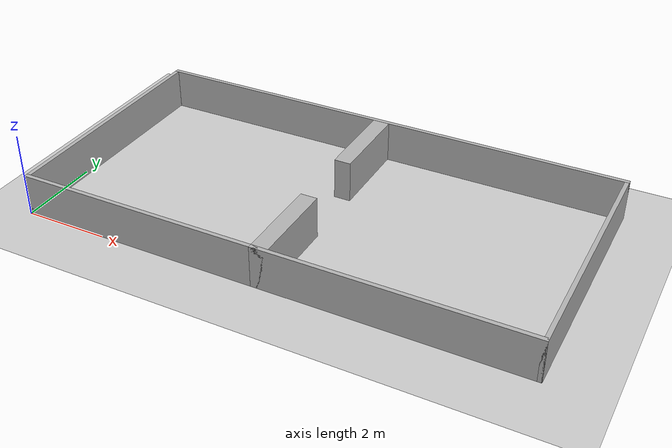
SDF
<?xml version="1.0" ?>
<sdf version="1.7">
  <world name="doorway">
    <gravity>0 0 -9.8</gravity>
    <include><uri>model://ground_plane</uri></include>
    <include><uri>model://sun</uri></include>

    <model name="box_0">
      <static>true</static>
      <pose>6.000 0.050 0.500 0 0 0</pose>
      <link name="link">
        <collision name="collision">
          <geometry><box><size>12.000 0.100 1.000</size></box></geometry>
        </collision>
        <visual name="visual">
          <geometry><box><size>12.000 0.100 1.000</size></box></geometry>
          <material><ambient>0.7 0.7 0.7 1</ambient><diffuse>0.7 0.7 0.7 1</diffuse></material>
        </visual>
      </link>
    </model>

    <model name="box_1">
      <static>true</static>
      <pose>6.000 5.950 0.500 0 0 0</pose>
      <link name="link">
        <collision name="collision">
          <geometry><box><size>12.000 0.100 1.000</size></box></geometry>
        </collision>
        <visual name="visual">
          <geometry><box><size>12.000 0.100 1.000</size></box></geometry>
          <material><ambient>0.7 0.7 0.7 1</ambient><diffuse>0.7 0.7 0.7 1</diffuse></material>
        </visual>
      </link>
    </model>

    <model name="box_2">
      <static>true</static>
      <pose>0.050 3.000 0.500 0 0 0</pose>
      <link name="link">
        <collision name="collision">
          <geometry><box><size>0.100 6.000 1.000</size></box></geometry>
        </collision>
        <visual name="visual">
          <geometry><box><size>0.100 6.000 1.000</size></box></geometry>
          <material><ambient>0.7 0.7 0.7 1</ambient><diffuse>0.7 0.7 0.7 1</diffuse></material>
        </visual>
      </link>
    </model>

    <model name="box_3">
      <static>true</static>
      <pose>11.950 3.000 0.500 0 0 0</pose>
      <link name="link">
        <collision name="collision">
          <geometry><box><size>0.100 6.000 1.000</size></box></geometry>
        </collision>
        <visual name="visual">
          <geometry><box><size>0.100 6.000 1.000</size></box></geometry>
          <material><ambient>0.7 0.7 0.7 1</ambient><diffuse>0.7 0.7 0.7 1</diffuse></material>
        </visual>
      </link>
    </model>

    <model name="box_4">
      <static>true</static>
      <pose>6.000 1.100 0.500 0 0 0</pose>
      <link name="link">
        <collision name="collision">
          <geometry><box><size>0.400 2.200 1.000</size></box></geometry>
        </collision>
        <visual name="visual">
          <geometry><box><size>0.400 2.200 1.000</size></box></geometry>
          <material><ambient>0.7 0.7 0.7 1</ambient><diffuse>0.7 0.7 0.7 1</diffuse></material>
        </visual>
      </link>
    </model>

    <model name="box_5">
      <static>true</static>
      <pose>6.000 4.900 0.500 0 0 0</pose>
      <link name="link">
        <collision name="collision">
          <geometry><box><size>0.400 2.200 1.000</size></box></geometry>
        </collision>
        <visual name="visual">
          <geometry><box><size>0.400 2.200 1.000</size></box></geometry>
          <material><ambient>0.7 0.7 0.7 1</ambient><diffuse>0.7 0.7 0.7 1</diffuse></material>
        </visual>
      </link>
    </model>
  </world>
</sdf>
